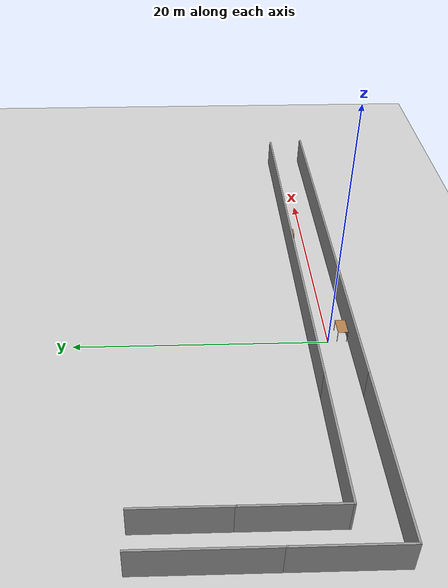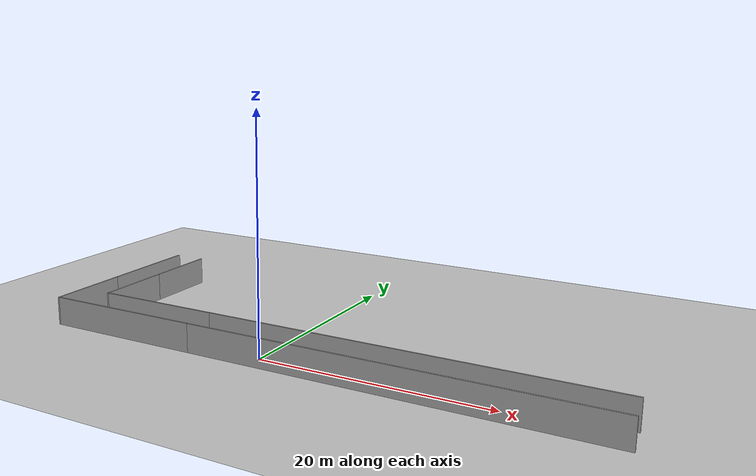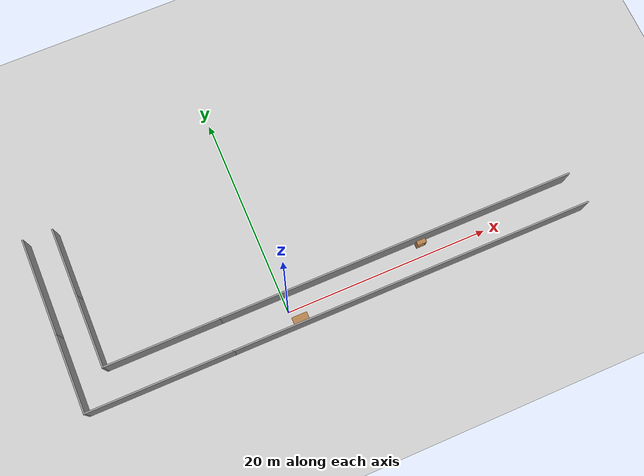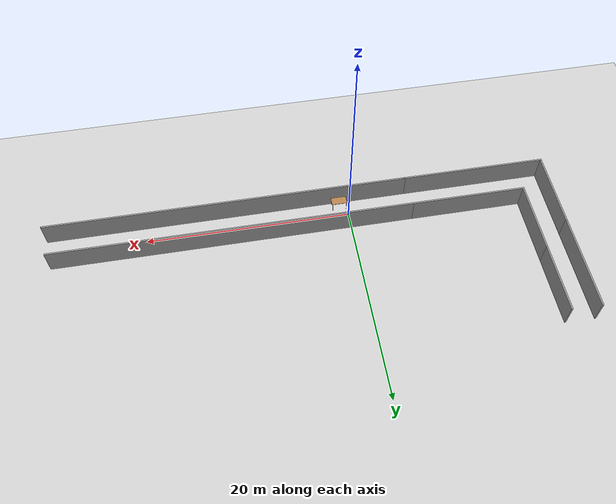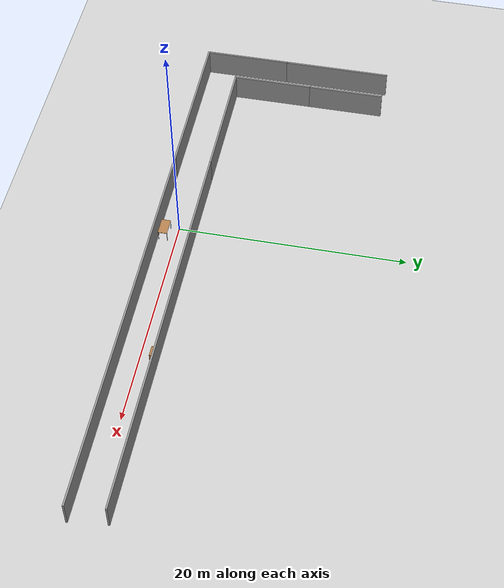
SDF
<sdf version="1.7">
 <world name="default">
  <model name="ground_plane">
   <static>1</static>
   <link name="link">
    <collision name="collision">
     <geometry><plane><normal>0 0 1</normal><size>100 100</size></plane></geometry>
     <surface>
      <contact><collide_bitmask>65535</collide_bitmask></contact>
      <friction><ode><mu>100</mu><mu2>50</mu2></ode></friction>
     </surface>
    </collision>
    <visual name="visual">
     <cast_shadows>0</cast_shadows>
     <geometry><plane><normal>0 0 1</normal><size>100 100</size></plane></geometry>
     <material>
      <script><uri>file://media/materials/scripts/gazebo.material</uri><name>Gazebo/Grey</name></script>
     </material>
    </visual>
   </link>
  </model>
  <model name="world2">
   <pose>4.72615 6.81622 0 0 -0 0</pose>
   <link name="Wall_12">
    <collision name="Wall_12_Collision">
     <geometry><box><size>7.75 0.15 2.5</size></box></geometry>
     <pose>0 0 1.25 0 -0 0</pose>
    </collision>
    <visual name="Wall_12_Visual">
     <pose>0 0 1.25 0 -0 0</pose>
     <geometry><box><size>7.75 0.15 2.5</size></box></geometry>
     <material>
      <script><uri>file://media/materials/scripts/gazebo.material</uri><name>Gazebo/Grey</name></script>
      <ambient>1 1 1 1</ambient>
     </material>
     <meta><layer>0</layer></meta>
    </visual>
    <pose>-24.6986 -4.675 0 0 -0 1.5708</pose>
   </link>
   <link name="Wall_14">
    <collision name="Wall_14_Collision">
     <geometry><box><size>11.25 0.15 2.5</size></box></geometry>
     <pose>0 0 1.25 0 -0 0</pose>
    </collision>
    <visual name="Wall_14_Visual">
     <pose>0 0 1.25 0 -0 0</pose>
     <geometry><box><size>11.25 0.15 2.5</size></box></geometry>
     <material>
      <script><uri>file://media/materials/scripts/gazebo.material</uri><name>Gazebo/Grey</name></script>
      <ambient>1 1 1 1</ambient>
     </material>
     <meta><layer>0</layer></meta>
    </visual>
    <pose>-16.3037 -5.29947 0 0 -0 3.14159</pose>
   </link>
   <link name="Wall_16">
    <collision name="Wall_16_Collision">
     <geometry><box><size>7.25 0.15 2.5</size></box></geometry>
     <pose>0 0 1.25 0 -0 0</pose>
    </collision>
    <visual name="Wall_16_Visual">
     <pose>0 0 1.25 0 -0 0</pose>
     <geometry><box><size>7.25 0.15 2.5</size></box></geometry>
     <material>
      <script><uri>file://media/materials/scripts/gazebo.material</uri><name>Gazebo/Grey</name></script>
      <ambient>1 1 1 1</ambient>
     </material>
     <meta><layer>0</layer></meta>
    </visual>
    <pose>-21.8537 -1.74947 0 0 -0 1.5708</pose>
   </link>
   <link name="Wall_18">
    <collision name="Wall_18_Collision">
     <geometry><box><size>9.5 0.15 2.5</size></box></geometry>
     <pose>0 0 1.25 0 -0 0</pose>
    </collision>
    <visual name="Wall_18_Visual">
     <pose>0 0 1.25 0 -0 0</pose>
     <geometry><box><size>9.5 0.15 2.5</size></box></geometry>
     <material>
      <script><uri>file://media/materials/scripts/gazebo.material</uri><name>Gazebo/Grey</name></script>
      <ambient>1 1 1 1</ambient>
     </material>
     <meta><layer>0</layer></meta>
    </visual>
    <pose>-24.6986 3.8 0 0 -0 1.5708</pose>
   </link>
   <link name="Wall_20">
    <collision name="Wall_20_Collision">
     <geometry><box><size>6.75 0.15 2.5</size></box></geometry>
     <pose>0 0 1.25 0 -0 0</pose>
    </collision>
    <visual name="Wall_20_Visual">
     <pose>0 0 1.25 0 -0 0</pose>
     <geometry><box><size>6.75 0.15 2.5</size></box></geometry>
     <material>
      <script><uri>file://media/materials/scripts/gazebo.material</uri><name>Gazebo/Grey</name></script>
      <ambient>1 1 1 1</ambient>
     </material>
     <meta><layer>0</layer></meta>
    </visual>
    <pose>-21.8537 5.10053 0 0 -0 1.5708</pose>
   </link>
   <link name="Wall_24">
    <collision name="Wall_24_Collision">
     <geometry><box><size>35.5 0.15 2.5</size></box></geometry>
     <pose>0 0 1.25 0 -0 0</pose>
    </collision>
    <visual name="Wall_24_Visual">
     <pose>0 0 1.25 0 -0 0</pose>
     <geometry><box><size>35.5 0.15 2.5</size></box></geometry>
     <material>
      <script><uri>file://media/materials/scripts/gazebo.material</uri><name>Gazebo/Grey</name></script>
      <ambient>1 1 1 1</ambient>
     </material>
     <meta><layer>0</layer></meta>
    </visual>
    <pose>7.02355 -8.475 0 0 -0 0</pose>
   </link>
   <link name="Wall_27">
    <collision name="Wall_27_Collision">
     <geometry><box><size>35.25 0.15 2.5</size></box></geometry>
     <pose>0 0 1.25 0 -0 0</pose>
    </collision>
    <visual name="Wall_27_Visual">
     <pose>0 0 1.25 0 -0 0</pose>
     <geometry><box><size>35.25 0.15 2.5</size></box></geometry>
     <material>
      <script><uri>file://media/materials/scripts/gazebo.material</uri><name>Gazebo/Grey</name></script>
      <ambient>1 1 1 1</ambient>
     </material>
     <meta><layer>0</layer></meta>
    </visual>
    <pose>6.79625 -5.29947 0 0 -0 0</pose>
   </link>
   <link name="Wall_9">
    <collision name="Wall_9_Collision">
     <geometry><box><size>14.1971 0.15 2.5</size></box></geometry>
     <pose>0 0 1.25 0 -0 0</pose>
    </collision>
    <visual name="Wall_9_Visual">
     <pose>0 0 1.25 0 -0 0</pose>
     <geometry><box><size>14.1971 0.15 2.5</size></box></geometry>
     <material>
      <script><uri>file://media/materials/scripts/gazebo.material</uri><name>Gazebo/Grey</name></script>
      <ambient>1 1 1 1</ambient>
     </material>
     <meta><layer>0</layer></meta>
    </visual>
    <pose>-17.675 -8.475 0 0 -0 3.14159</pose>
   </link>
   <static>1</static>
  </model>
  <model name="bookshelf">
   <static>1</static>
   <link name="link">
    <inertial><mass>1</mass></inertial>
    <collision name="back">
     <pose>0 0.005 0.6 0 -0 0</pose>
     <geometry><box><size>0.9 0.01 1.2</size></box></geometry>
    </collision>
    <visual name="visual1">
     <pose>0 0.005 0.6 0 -0 0</pose>
     <geometry><box><size>0.9 0.01 1.2</size></box></geometry>
     <material>
      <script><uri>file://media/materials/scripts/gazebo.material</uri><name>Gazebo/Wood</name></script>
     </material>
    </visual>
    <collision name="left_side">
     <pose>0.45 -0.195 0.6 0 -0 0</pose>
     <geometry><box><size>0.02 0.4 1.2</size></box></geometry>
    </collision>
    <visual name="visual2">
     <pose>0.45 -0.195 0.6 0 -0 0</pose>
     <geometry><box><size>0.02 0.4 1.2</size></box></geometry>
     <material>
      <script><uri>file://media/materials/scripts/gazebo.material</uri><name>Gazebo/Wood</name></script>
     </material>
    </visual>
    <collision name="right_side">
     <pose>-0.45 -0.195 0.6 0 -0 0</pose>
     <geometry><box><size>0.02 0.4 1.2</size></box></geometry>
    </collision>
    <visual name="visual3">
     <pose>-0.45 -0.195 0.6 0 -0 0</pose>
     <geometry><box><size>0.02 0.4 1.2</size></box></geometry>
     <material>
      <script><uri>file://media/materials/scripts/gazebo.material</uri><name>Gazebo/Wood</name></script>
     </material>
    </visual>
    <collision name="bottom">
     <pose>0 -0.195 0.03 0 -0 0</pose>
     <geometry><box><size>0.88 0.4 0.06</size></box></geometry>
    </collision>
    <visual name="visual4">
     <pose>0 -0.195 0.03 0 -0 0</pose>
     <geometry><box><size>0.88 0.4 0.06</size></box></geometry>
     <material>
      <script><uri>file://media/materials/scripts/gazebo.material</uri><name>Gazebo/Wood</name></script>
     </material>
    </visual>
    <collision name="top">
     <pose>0 -0.195 1.19 0 -0 0</pose>
     <geometry><box><size>0.88 0.4 0.02</size></box></geometry>
    </collision>
    <visual name="visual5">
     <pose>0 -0.195 1.19 0 -0 0</pose>
     <geometry><box><size>0.88 0.4 0.02</size></box></geometry>
     <material>
      <script><uri>file://media/materials/scripts/gazebo.material</uri><name>Gazebo/Wood</name></script>
     </material>
    </visual>
    <collision name="low_shelf">
     <pose>0 -0.195 0.43 0 -0 0</pose>
     <geometry><box><size>0.88 0.4 0.02</size></box></geometry>
    </collision>
    <visual name="visual6">
     <pose>0 -0.195 0.43 0 -0 0</pose>
     <geometry><box><size>0.88 0.4 0.02</size></box></geometry>
     <material>
      <script><uri>file://media/materials/scripts/gazebo.material</uri><name>Gazebo/Wood</name></script>
     </material>
    </visual>
    <collision name="high_shelf">
     <pose>0 -0.195 0.8 0 -0 0</pose>
     <geometry><box><size>0.88 0.4 0.02</size></box></geometry>
    </collision>
    <visual name="visual7">
     <pose>0 -0.195 0.8 0 -0 0</pose>
     <geometry><box><size>0.88 0.4 0.02</size></box></geometry>
     <material>
      <script><uri>file://media/materials/scripts/gazebo.material</uri><name>Gazebo/Wood</name></script>
     </material>
    </visual>
   </link>
   <pose>13.9169 1.35255 0 0 -0 0</pose>
  </model>
  <model name="table">
   <static>1</static>
   <link name="link">
    <collision name="surface">
     <pose>0 0 1 0 -0 0</pose>
     <geometry><box><size>1.5 0.8 0.03</size></box></geometry>
     <surface><friction><ode><mu>0.6</mu><mu2>0.6</mu2></ode></friction></surface>
    </collision>
    <visual name="visual1">
     <pose>0 0 1 0 -0 0</pose>
     <geometry><box><size>1.5 0.8 0.03</size></box></geometry>
     <material>
      <script><uri>file://media/materials/scripts/gazebo.material</uri><name>Gazebo/Wood</name></script>
     </material>
    </visual>
    <collision name="front_left_leg_collision">
     <pose>0.68 0.38 0.5 0 -0 0</pose>
     <geometry><cylinder><radius>0.02</radius><length>1</length></cylinder></geometry>
    </collision>
    <visual name="front_left_leg_visual">
     <pose>0.68 0.38 0.5 0 -0 0</pose>
     <geometry><cylinder><radius>0.02</radius><length>1</length></cylinder></geometry>
     <material>
      <script><uri>file://media/materials/scripts/gazebo.material</uri><name>Gazebo/Grey</name></script>
     </material>
    </visual>
    <collision name="front_right_leg_collision">
     <pose>0.68 -0.38 0.5 0 -0 0</pose>
     <geometry><cylinder><radius>0.02</radius><length>1</length></cylinder></geometry>
    </collision>
    <visual name="front_right_leg_visual">
     <pose>0.68 -0.38 0.5 0 -0 0</pose>
     <geometry><cylinder><radius>0.02</radius><length>1</length></cylinder></geometry>
     <material>
      <script><uri>file://media/materials/scripts/gazebo.material</uri><name>Gazebo/Grey</name></script>
     </material>
    </visual>
    <collision name="back_right_leg_collision">
     <pose>-0.68 -0.38 0.5 0 -0 0</pose>
     <geometry><cylinder><radius>0.02</radius><length>1</length></cylinder></geometry>
    </collision>
    <visual name="back_right_leg_visual">
     <pose>-0.68 -0.38 0.5 0 -0 0</pose>
     <geometry><cylinder><radius>0.02</radius><length>1</length></cylinder></geometry>
     <material>
      <script><uri>file://media/materials/scripts/gazebo.material</uri><name>Gazebo/Grey</name></script>
     </material>
    </visual>
    <collision name="back_left_leg_collision">
     <pose>-0.68 0.38 0.5 0 -0 0</pose>
     <geometry><cylinder><radius>0.02</radius><length>1</length></cylinder></geometry>
    </collision>
    <visual name="back_left_leg_visual">
     <pose>-0.68 0.38 0.5 0 -0 0</pose>
     <geometry><cylinder><radius>0.02</radius><length>1</length></cylinder></geometry>
     <material>
      <script><uri>file://media/materials/scripts/gazebo.material</uri><name>Gazebo/Grey</name></script>
     </material>
    </visual>
   </link>
   <pose>0.761705 -1.08847 0 0 -0 0</pose>
  </model>
 </world>
</sdf>
